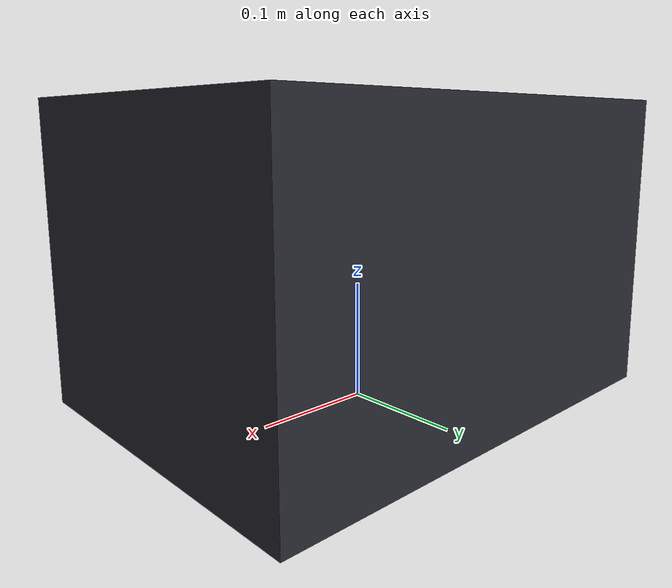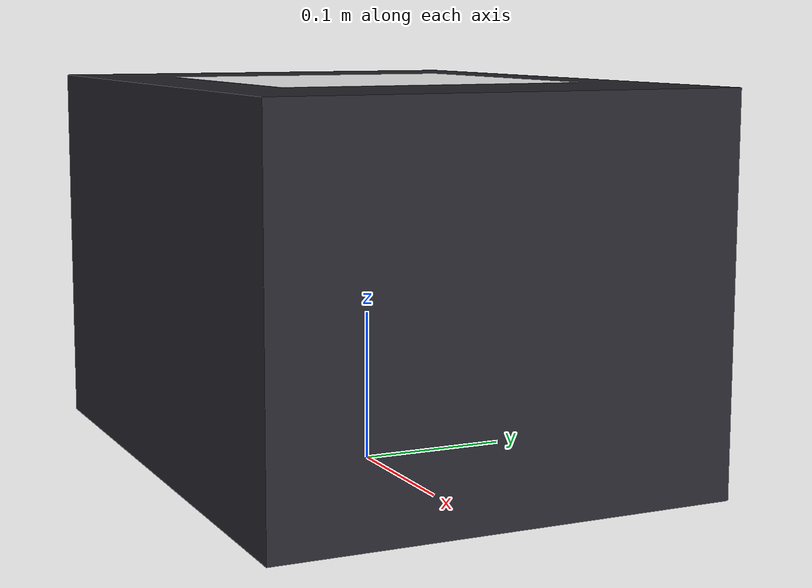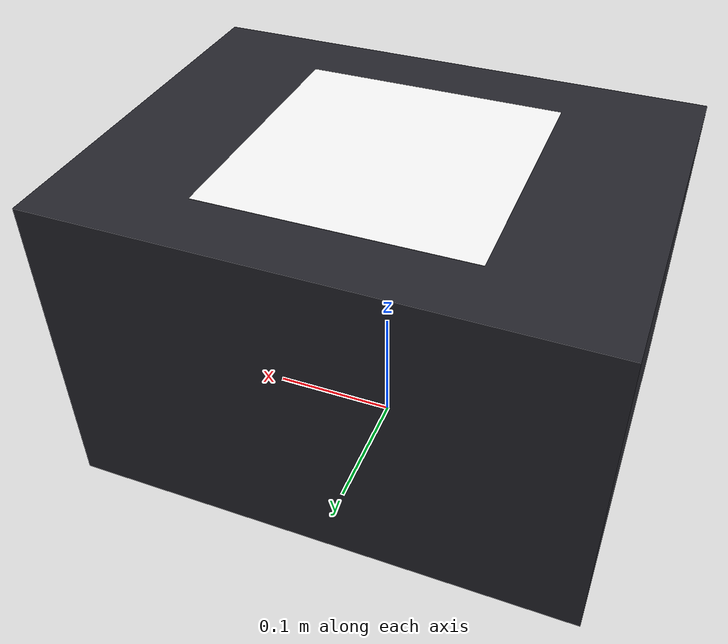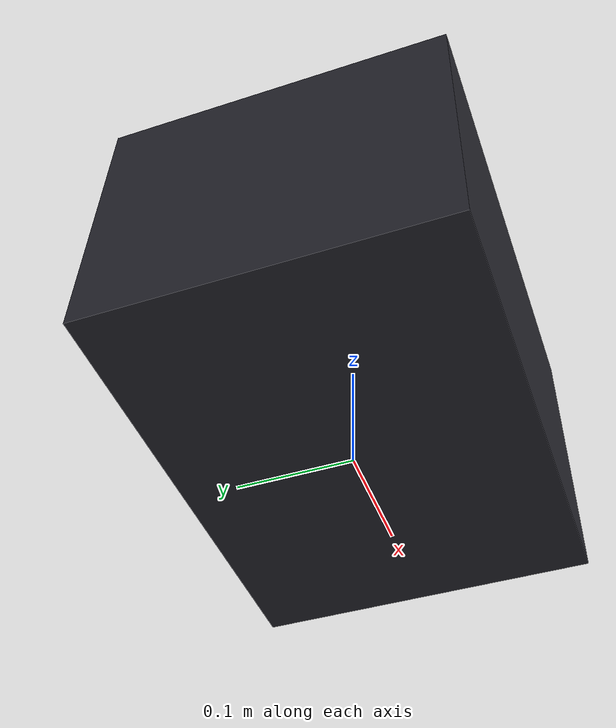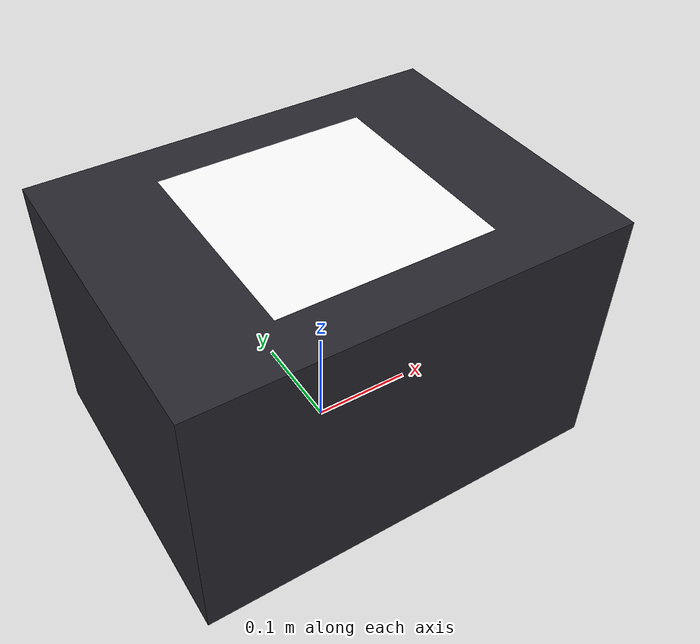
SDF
<?xml version="1.0"?>
<sdf version="1.9">
  <model name="convoy_robot_23">
    <!-- SIM-3 convoy robot carrying aruco id=23 (20cm). Generated by sim/gen_markers.py. -->
    <link name="base_link">
      <pose>0 0 0.1300 0 0 0</pose>
      <inertial>
        <mass>5.0</mass>
        <inertia><ixx>0.08</ixx><iyy>0.12</iyy><izz>0.15</izz><ixy>0</ixy><ixz>0</ixz><iyz>0</iyz></inertia>
      </inertial>
      <collision name="chassis_col">
        <geometry><box><size>0.4 0.3 0.25</size></box></geometry>
      </collision>
      <visual name="chassis_vis">
        <geometry><box><size>0.4 0.3 0.25</size></box></geometry>
        <material><diffuse>0.15 0.15 0.18 1</diffuse></material>
      </visual>
      <visual name="marker_top">
        <pose>0 0 0.1255 0 0 0</pose>
        <geometry>
          <plane><normal>0 0 1</normal><size>0.2000 0.2000</size></plane>
        </geometry>
        <material>
          <diffuse>1 1 1 1</diffuse>
          <specular>0 0 0 1</specular>
          <pbr>
            <metal>
              <albedo_map>model://convoy_robot_23/materials/textures/convoy_robot_23.png</albedo_map>
              <metalness>0.0</metalness>
              <roughness>1.0</roughness>
            </metal>
          </pbr>
        </material>
      </visual>
    </link>
    <plugin filename="gz-sim-velocity-control-system"
            name="gz::sim::systems::VelocityControl">
      <topic>/model/convoy_robot_23/cmd_vel</topic>
      <!-- hold still (no gravity fall) until the rclpy driver sends cmd_vel;
           linear is body-frame, so constant linear.x + angular.z => a circle. -->
      <initial_linear>0 0 0</initial_linear>
      <initial_angular>0 0 0</initial_angular>
    </plugin>
  </model>
</sdf>
